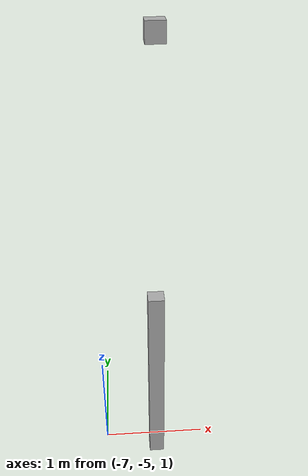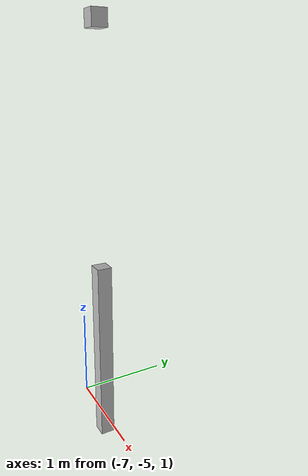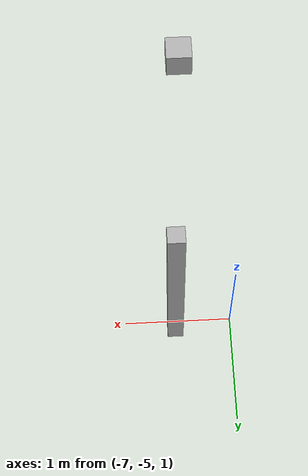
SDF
<sdf version="1.7">
 <world name="default">
  <model name="orthogonal_747_2.000.15_TS">
   <static>1</static>
   <link name="z_link_2_0_0">
    <inertial>
     <mass>1</mass>
     <inertia>
      <ixx>0.166667</ixx>
      <ixy>0</ixy>
      <ixz>0</ixz>
      <iyy>0.166667</iyy>
      <iyz>0</iyz>
      <izz>0.166667</izz>
     </inertia>
    </inertial>
    <pose>0 0 4.3 0 -0 0</pose>
    <visual name="visual_0">
     <laser_retro>1674</laser_retro>
     <geometry><box><size>0.15 1e-06 2</size></box></geometry>
     <material>
      <script><name>Gazebo/Grey</name><uri>file://media/materials/scripts/gazebo.material</uri></script>
      <shader type="pixel"><normal_map>__default__</normal_map></shader>
      <ambient>0.678 0.498 0.659 1</ambient>
      <diffuse>0.7 0.7 0.7 1</diffuse>
      <specular>0.01 0.01 0.01 1</specular>
      <emissive>0 0 0 1</emissive>
     </material>
     <pose>0 -0.075 0 0 -0 0</pose>
     <transparency>1</transparency>
    </visual>
    <visual name="visual_1">
     <laser_retro>1675</laser_retro>
     <geometry><box><size>0.15 1e-06 2</size></box></geometry>
     <material>
      <script><name>Gazebo/Grey</name><uri>file://media/materials/scripts/gazebo.material</uri></script>
      <shader type="pixel"><normal_map>__default__</normal_map></shader>
      <ambient>0.447 0.624 0.812 1</ambient>
      <diffuse>0.7 0.7 0.7 1</diffuse>
      <specular>0.01 0.01 0.01 1</specular>
      <emissive>0 0 0 1</emissive>
     </material>
     <pose>0 0.075 0 0 -0 0</pose>
     <transparency>1</transparency>
    </visual>
    <visual name="visual_2">
     <laser_retro>1676</laser_retro>
     <geometry><box><size>0.15 0.15 1e-06</size></box></geometry>
     <material>
      <script><name>Gazebo/Grey</name><uri>file://media/materials/scripts/gazebo.material</uri></script>
      <shader type="pixel"><normal_map>__default__</normal_map></shader>
      <ambient>0.988 0.686 0.243 1</ambient>
      <diffuse>0.7 0.7 0.7 1</diffuse>
      <specular>0.01 0.01 0.01 1</specular>
      <emissive>0 0 0 1</emissive>
     </material>
     <pose>0 0 -1 0 -0 0</pose>
     <transparency>1</transparency>
    </visual>
    <visual name="visual_3">
     <laser_retro>1677</laser_retro>
     <geometry><box><size>1e-06 0.15 2</size></box></geometry>
     <material>
      <script><name>Gazebo/Grey</name><uri>file://media/materials/scripts/gazebo.material</uri></script>
      <shader type="pixel"><normal_map>__default__</normal_map></shader>
      <ambient>0.988 0.914 0.31 1</ambient>
      <diffuse>0.7 0.7 0.7 1</diffuse>
      <specular>0.01 0.01 0.01 1</specular>
      <emissive>0 0 0 1</emissive>
     </material>
     <pose>0.075 0 0 0 -0 0</pose>
     <transparency>1</transparency>
    </visual>
    <visual name="visual_4">
     <laser_retro>1678</laser_retro>
     <geometry><box><size>0.15 0.15 1e-06</size></box></geometry>
     <material>
      <script><name>Gazebo/Grey</name><uri>file://media/materials/scripts/gazebo.material</uri></script>
      <shader type="pixel"><normal_map>__default__</normal_map></shader>
      <ambient>0.937 0.161 0.161 1</ambient>
      <diffuse>0.7 0.7 0.7 1</diffuse>
      <specular>0.01 0.01 0.01 1</specular>
      <emissive>0 0 0 1</emissive>
     </material>
     <pose>0 0 1 0 -0 0</pose>
     <transparency>1</transparency>
    </visual>
    <visual name="visual_5">
     <laser_retro>1679</laser_retro>
     <geometry><box><size>1e-06 0.15 2</size></box></geometry>
     <material>
      <script><name>Gazebo/Grey</name><uri>file://media/materials/scripts/gazebo.material</uri></script>
      <shader type="pixel"><normal_map>__default__</normal_map></shader>
      <ambient>0.541 0.886 0.204 1</ambient>
      <diffuse>0.7 0.7 0.7 1</diffuse>
      <specular>0.01 0.01 0.01 1</specular>
      <emissive>0 0 0 1</emissive>
     </material>
     <pose>-0.075 0 0 0 -0 0</pose>
     <transparency>1</transparency>
    </visual>
    <visual name="visual_texture">
     <geometry><box><size>0.149985 0.149985 1.9998</size></box></geometry>
     <material>
      <script>
       <uri>model://BASE_MODELS/simple_block_v2_textured/materials/scripts</uri>
       <uri>model://BASE_MODELS/simple_block_v2_textured/materials/textures</uri>
       <name>metal</name>
      </script>
     </material>
     <laser_retro>1680</laser_retro>
    </visual>
    <collision name="collision">
     <geometry><box><size>0.15 0.15 2</size></box></geometry>
     <surface>
      <friction>
       <ode><mu>1</mu><mu2>1</mu2><fdir1>0 0 0</fdir1><slip1>0</slip1><slip2>0</slip2></ode>
       <torsional>
        <coefficient>1</coefficient>
        <patch_radius>0</patch_radius>
        <surface_radius>0</surface_radius>
        <use_patch_radius>1</use_patch_radius>
        <ode><slip>0</slip></ode>
       </torsional>
      </friction>
      <bounce><restitution_coefficient>0</restitution_coefficient><threshold>1e+06</threshold></bounce>
      <contact>
       <collide_without_contact>0</collide_without_contact>
       <collide_without_contact_bitmask>1</collide_without_contact_bitmask>
       <collide_bitmask>1</collide_bitmask>
       <ode>
        <soft_cfm>0</soft_cfm>
        <soft_erp>0.2</soft_erp>
        <kp>1e+13</kp>
        <kd>1</kd>
        <max_vel>0.01</max_vel>
        <min_depth>0</min_depth>
       </ode>
       <bullet>
        <split_impulse>1</split_impulse>
        <split_impulse_penetration_threshold>-0.01</split_impulse_penetration_threshold>
        <soft_cfm>0</soft_cfm>
        <soft_erp>0.2</soft_erp>
        <kp>1e+13</kp>
        <kd>1</kd>
       </bullet>
      </contact>
     </surface>
    </collision>
   </link>
   <link name="u_link_3_0_0">
    <inertial>
     <mass>1</mass>
     <inertia>
      <ixx>0.166667</ixx>
      <ixy>0</ixy>
      <ixz>0</ixz>
      <iyy>0.166667</iyy>
      <iyz>0</iyz>
      <izz>0.166667</izz>
     </inertia>
    </inertial>
    <pose>0 0 7.525 0 -0 0</pose>
    <visual name="visual_0">
     <laser_retro>2570</laser_retro>
     <geometry><box><size>0.15 1e-06 0.15</size></box></geometry>
     <material>
      <script><name>Gazebo/Grey</name><uri>file://media/materials/scripts/gazebo.material</uri></script>
      <shader type="pixel"><normal_map>__default__</normal_map></shader>
      <ambient>0.678 0.498 0.659 1</ambient>
      <diffuse>0.7 0.7 0.7 1</diffuse>
      <specular>0.01 0.01 0.01 1</specular>
      <emissive>0 0 0 1</emissive>
     </material>
     <pose>0 -0.075 0 0 -0 0</pose>
     <transparency>1</transparency>
    </visual>
    <visual name="visual_1">
     <laser_retro>2571</laser_retro>
     <geometry><box><size>0.15 1e-06 0.15</size></box></geometry>
     <material>
      <script><name>Gazebo/Grey</name><uri>file://media/materials/scripts/gazebo.material</uri></script>
      <shader type="pixel"><normal_map>__default__</normal_map></shader>
      <ambient>0.447 0.624 0.812 1</ambient>
      <diffuse>0.7 0.7 0.7 1</diffuse>
      <specular>0.01 0.01 0.01 1</specular>
      <emissive>0 0 0 1</emissive>
     </material>
     <pose>0 0.075 0 0 -0 0</pose>
     <transparency>1</transparency>
    </visual>
    <visual name="visual_2">
     <laser_retro>2572</laser_retro>
     <geometry><box><size>0.15 0.15 1e-06</size></box></geometry>
     <material>
      <script><name>Gazebo/Grey</name><uri>file://media/materials/scripts/gazebo.material</uri></script>
      <shader type="pixel"><normal_map>__default__</normal_map></shader>
      <ambient>0.988 0.686 0.243 1</ambient>
      <diffuse>0.7 0.7 0.7 1</diffuse>
      <specular>0.01 0.01 0.01 1</specular>
      <emissive>0 0 0 1</emissive>
     </material>
     <pose>0 0 -0.075 0 -0 0</pose>
     <transparency>1</transparency>
    </visual>
    <visual name="visual_3">
     <laser_retro>2573</laser_retro>
     <geometry><box><size>1e-06 0.15 0.15</size></box></geometry>
     <material>
      <script><name>Gazebo/Grey</name><uri>file://media/materials/scripts/gazebo.material</uri></script>
      <shader type="pixel"><normal_map>__default__</normal_map></shader>
      <ambient>0.988 0.914 0.31 1</ambient>
      <diffuse>0.7 0.7 0.7 1</diffuse>
      <specular>0.01 0.01 0.01 1</specular>
      <emissive>0 0 0 1</emissive>
     </material>
     <pose>0.075 0 0 0 -0 0</pose>
     <transparency>1</transparency>
    </visual>
    <visual name="visual_4">
     <laser_retro>2574</laser_retro>
     <geometry><box><size>0.15 0.15 1e-06</size></box></geometry>
     <material>
      <script><name>Gazebo/Grey</name><uri>file://media/materials/scripts/gazebo.material</uri></script>
      <shader type="pixel"><normal_map>__default__</normal_map></shader>
      <ambient>0.937 0.161 0.161 1</ambient>
      <diffuse>0.7 0.7 0.7 1</diffuse>
      <specular>0.01 0.01 0.01 1</specular>
      <emissive>0 0 0 1</emissive>
     </material>
     <pose>0 0 0.075 0 -0 0</pose>
     <transparency>1</transparency>
    </visual>
    <visual name="visual_5">
     <laser_retro>2575</laser_retro>
     <geometry><box><size>1e-06 0.15 0.15</size></box></geometry>
     <material>
      <script><name>Gazebo/Grey</name><uri>file://media/materials/scripts/gazebo.material</uri></script>
      <shader type="pixel"><normal_map>__default__</normal_map></shader>
      <ambient>0.541 0.886 0.204 1</ambient>
      <diffuse>0.7 0.7 0.7 1</diffuse>
      <specular>0.01 0.01 0.01 1</specular>
      <emissive>0 0 0 1</emissive>
     </material>
     <pose>-0.075 0 0 0 -0 0</pose>
     <transparency>1</transparency>
    </visual>
    <visual name="visual_texture">
     <geometry><box><size>0.149985 0.149985 0.149985</size></box></geometry>
     <material>
      <script>
       <uri>model://BASE_MODELS/simple_block_v2_textured/materials/scripts</uri>
       <uri>model://BASE_MODELS/simple_block_v2_textured/materials/textures</uri>
       <name>metal</name>
      </script>
     </material>
     <laser_retro>2576</laser_retro>
    </visual>
    <collision name="collision">
     <geometry><box><size>0.15 0.15 0.15</size></box></geometry>
     <surface>
      <friction>
       <ode><mu>1</mu><mu2>1</mu2><fdir1>0 0 0</fdir1><slip1>0</slip1><slip2>0</slip2></ode>
       <torsional>
        <coefficient>1</coefficient>
        <patch_radius>0</patch_radius>
        <surface_radius>0</surface_radius>
        <use_patch_radius>1</use_patch_radius>
        <ode><slip>0</slip></ode>
       </torsional>
      </friction>
      <bounce><restitution_coefficient>0</restitution_coefficient><threshold>1e+06</threshold></bounce>
      <contact>
       <collide_without_contact>0</collide_without_contact>
       <collide_without_contact_bitmask>1</collide_without_contact_bitmask>
       <collide_bitmask>1</collide_bitmask>
       <ode>
        <soft_cfm>0</soft_cfm>
        <soft_erp>0.2</soft_erp>
        <kp>1e+13</kp>
        <kd>1</kd>
        <max_vel>0.01</max_vel>
        <min_depth>0</min_depth>
       </ode>
       <bullet>
        <split_impulse>1</split_impulse>
        <split_impulse_penetration_threshold>-0.01</split_impulse_penetration_threshold>
        <soft_cfm>0</soft_cfm>
        <soft_erp>0.2</soft_erp>
        <kp>1e+13</kp>
        <kd>1</kd>
       </bullet>
      </contact>
     </surface>
    </collision>
   </link>
   <pose>-6.47624 -5 -2.5 0 -0 0</pose>
  </model>
 </world>
</sdf>
